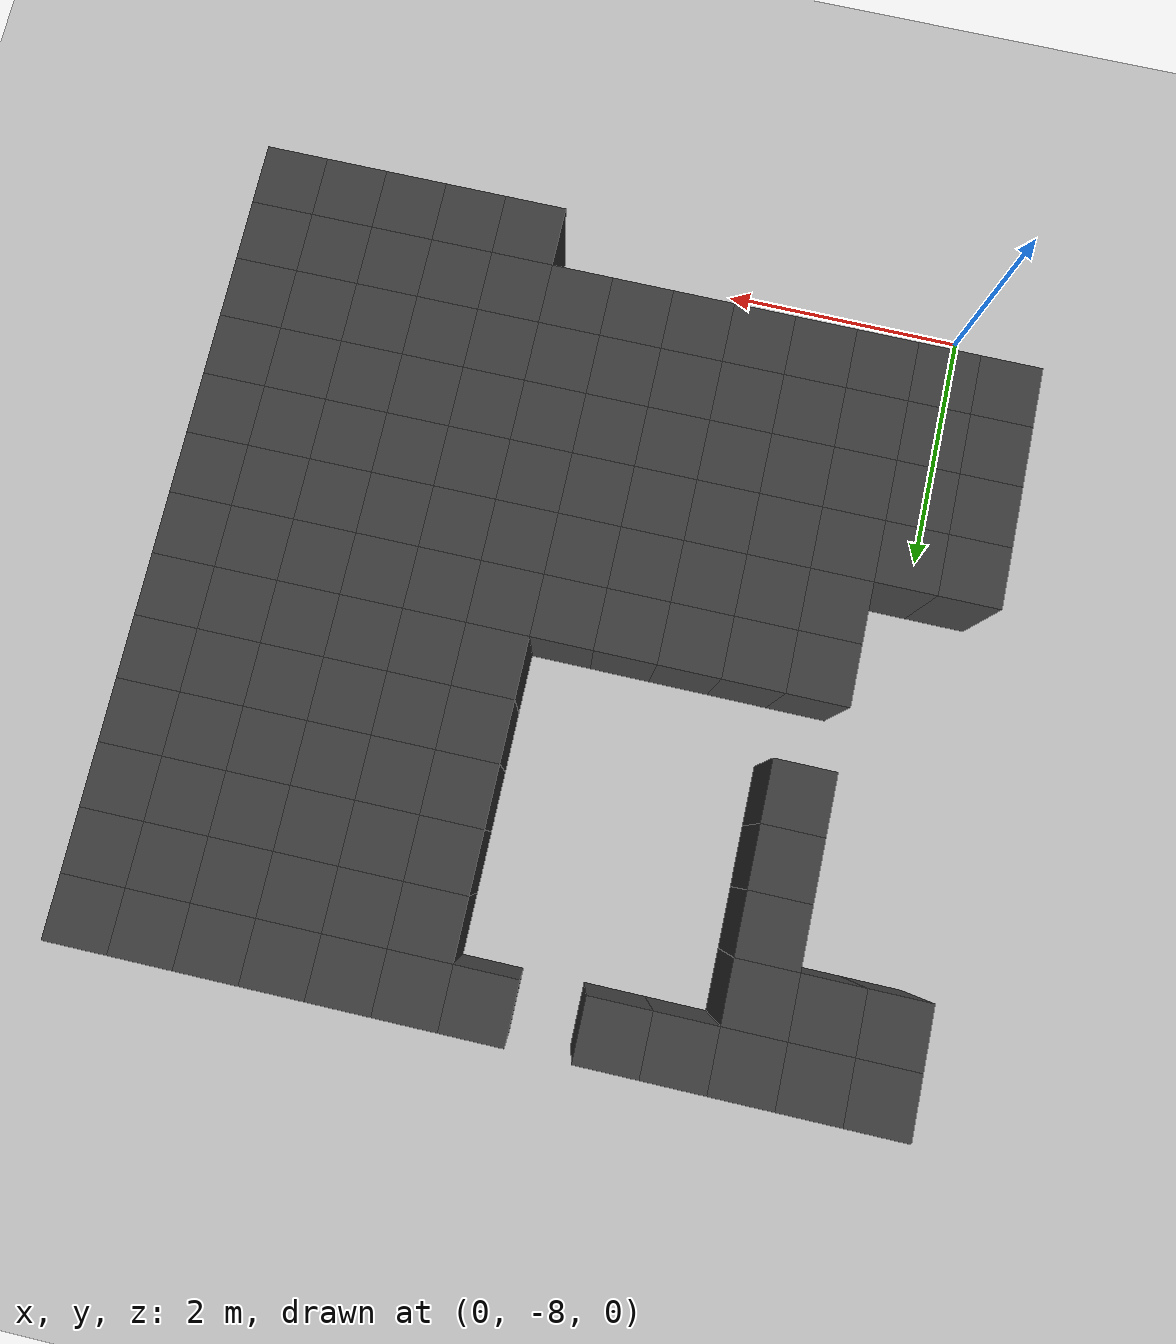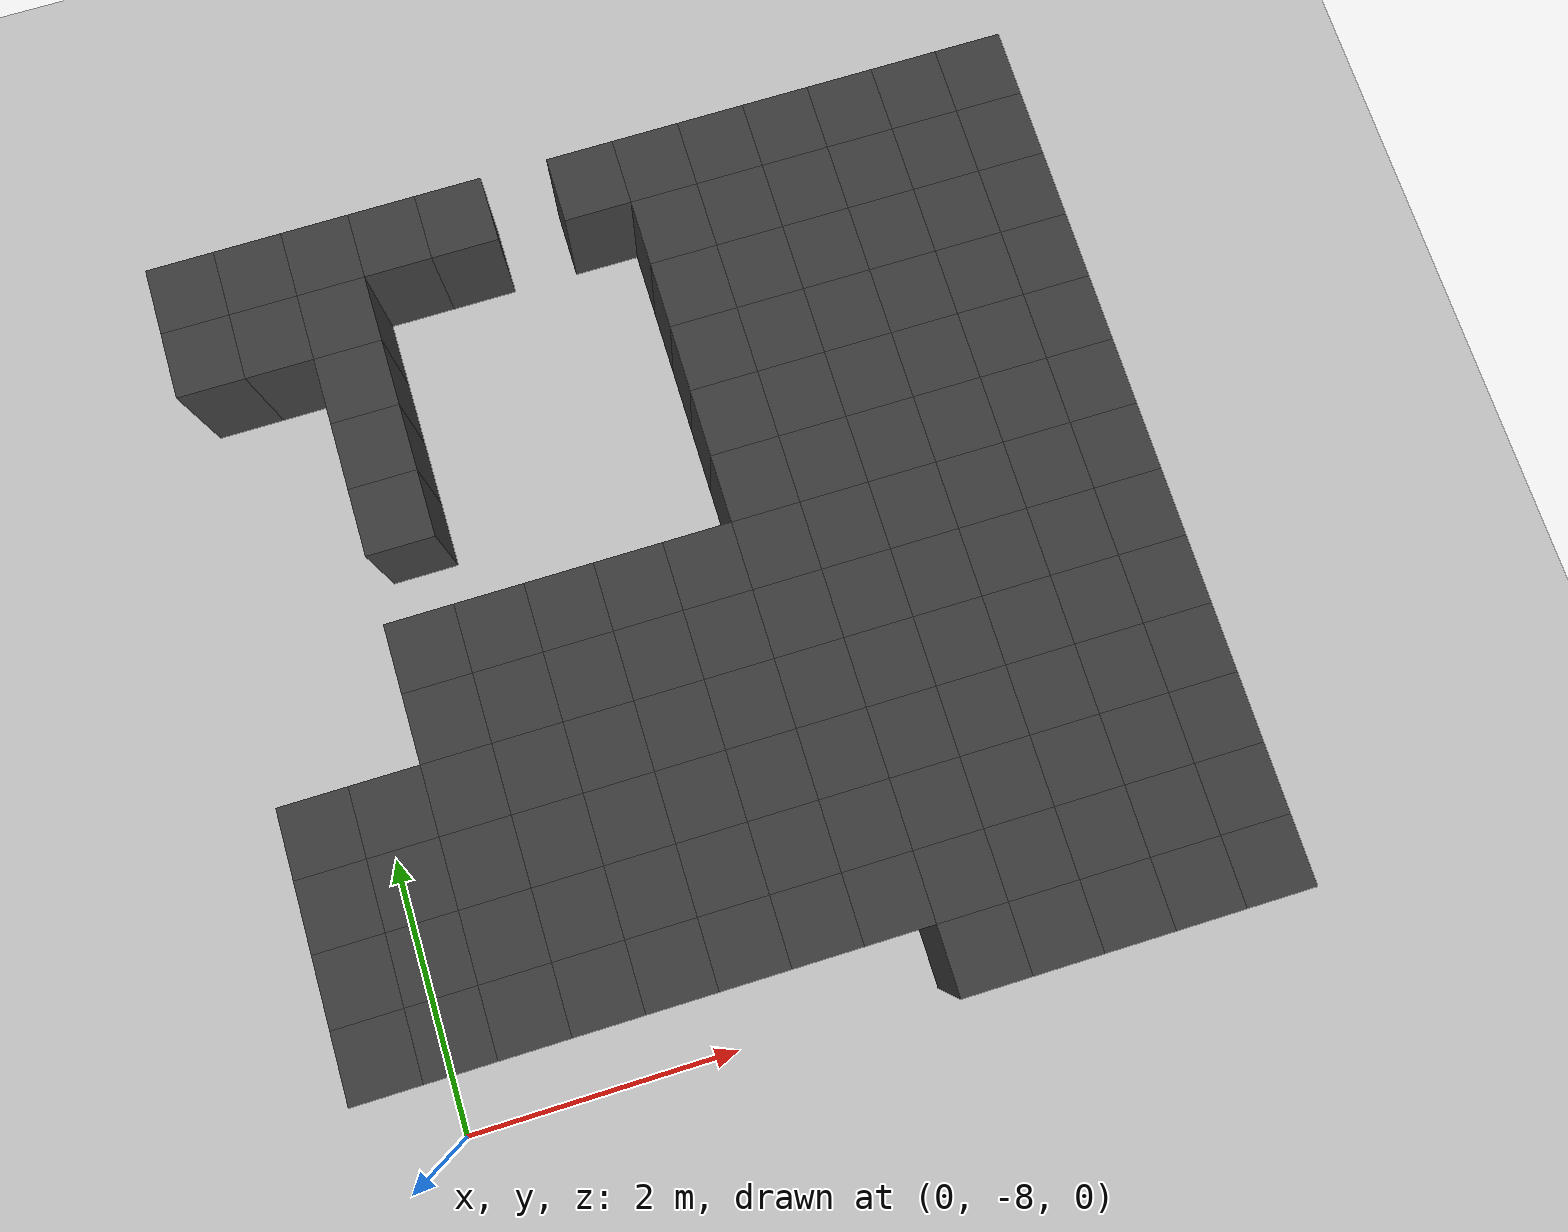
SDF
<sdf version="1.7">
 <world name="map_11672">
  <model name="ground_plane">
   <static>true</static>
   <link name="link">
    <collision name="collision">
     <geometry><plane><normal>0 0 1</normal><size>200 200</size></plane></geometry>
    </collision>
    <visual name="visual">
     <geometry><plane><normal>0 0 1</normal><size>200 200</size></plane></geometry>
     <material><ambient>0.8 0.8 0.8 1</ambient><diffuse>0.8 0.8 0.8 1</diffuse></material>
    </visual>
   </link>
  </model>
  <model name="maze_environment">
   <static>true</static>
   <link name="wall_1171">
    <pose>-0.250 -1.750 0.500 0 0 0</pose>
    <collision name="col"><geometry><box><size>0.5 0.5 1.0</size></box></geometry></collision>
    <visual name="vis">
     <geometry><box><size>0.5 0.5 1.0</size></box></geometry>
     <material><ambient>0.15 0.15 0.15 1</ambient><diffuse>0.25 0.25 0.25 1</diffuse></material>
    </visual>
   </link>
   <link name="wall_1172">
    <pose>0.250 -1.750 0.500 0 0 0</pose>
    <collision name="col"><geometry><box><size>0.5 0.5 1.0</size></box></geometry></collision>
    <visual name="vis">
     <geometry><box><size>0.5 0.5 1.0</size></box></geometry>
     <material><ambient>0.15 0.15 0.15 1</ambient><diffuse>0.25 0.25 0.25 1</diffuse></material>
    </visual>
   </link>
   <link name="wall_1173">
    <pose>0.750 -1.750 0.500 0 0 0</pose>
    <collision name="col"><geometry><box><size>0.5 0.5 1.0</size></box></geometry></collision>
    <visual name="vis">
     <geometry><box><size>0.5 0.5 1.0</size></box></geometry>
     <material><ambient>0.15 0.15 0.15 1</ambient><diffuse>0.25 0.25 0.25 1</diffuse></material>
    </visual>
   </link>
   <link name="wall_1174">
    <pose>1.250 -1.750 0.500 0 0 0</pose>
    <collision name="col"><geometry><box><size>0.5 0.5 1.0</size></box></geometry></collision>
    <visual name="vis">
     <geometry><box><size>0.5 0.5 1.0</size></box></geometry>
     <material><ambient>0.15 0.15 0.15 1</ambient><diffuse>0.25 0.25 0.25 1</diffuse></material>
    </visual>
   </link>
   <link name="wall_1175">
    <pose>1.750 -1.750 0.500 0 0 0</pose>
    <collision name="col"><geometry><box><size>0.5 0.5 1.0</size></box></geometry></collision>
    <visual name="vis">
     <geometry><box><size>0.5 0.5 1.0</size></box></geometry>
     <material><ambient>0.15 0.15 0.15 1</ambient><diffuse>0.25 0.25 0.25 1</diffuse></material>
    </visual>
   </link>
   <link name="wall_1176">
    <pose>2.750 -1.750 0.500 0 0 0</pose>
    <collision name="col"><geometry><box><size>0.5 0.5 1.0</size></box></geometry></collision>
    <visual name="vis">
     <geometry><box><size>0.5 0.5 1.0</size></box></geometry>
     <material><ambient>0.15 0.15 0.15 1</ambient><diffuse>0.25 0.25 0.25 1</diffuse></material>
    </visual>
   </link>
   <link name="wall_1177">
    <pose>3.250 -1.750 0.500 0 0 0</pose>
    <collision name="col"><geometry><box><size>0.5 0.5 1.0</size></box></geometry></collision>
    <visual name="vis">
     <geometry><box><size>0.5 0.5 1.0</size></box></geometry>
     <material><ambient>0.15 0.15 0.15 1</ambient><diffuse>0.25 0.25 0.25 1</diffuse></material>
    </visual>
   </link>
   <link name="wall_1178">
    <pose>3.750 -1.750 0.500 0 0 0</pose>
    <collision name="col"><geometry><box><size>0.5 0.5 1.0</size></box></geometry></collision>
    <visual name="vis">
     <geometry><box><size>0.5 0.5 1.0</size></box></geometry>
     <material><ambient>0.15 0.15 0.15 1</ambient><diffuse>0.25 0.25 0.25 1</diffuse></material>
    </visual>
   </link>
   <link name="wall_1179">
    <pose>4.250 -1.750 0.500 0 0 0</pose>
    <collision name="col"><geometry><box><size>0.5 0.5 1.0</size></box></geometry></collision>
    <visual name="vis">
     <geometry><box><size>0.5 0.5 1.0</size></box></geometry>
     <material><ambient>0.15 0.15 0.15 1</ambient><diffuse>0.25 0.25 0.25 1</diffuse></material>
    </visual>
   </link>
   <link name="wall_1180">
    <pose>4.750 -1.750 0.500 0 0 0</pose>
    <collision name="col"><geometry><box><size>0.5 0.5 1.0</size></box></geometry></collision>
    <visual name="vis">
     <geometry><box><size>0.5 0.5 1.0</size></box></geometry>
     <material><ambient>0.15 0.15 0.15 1</ambient><diffuse>0.25 0.25 0.25 1</diffuse></material>
    </visual>
   </link>
   <link name="wall_1181">
    <pose>5.250 -1.750 0.500 0 0 0</pose>
    <collision name="col"><geometry><box><size>0.5 0.5 1.0</size></box></geometry></collision>
    <visual name="vis">
     <geometry><box><size>0.5 0.5 1.0</size></box></geometry>
     <material><ambient>0.15 0.15 0.15 1</ambient><diffuse>0.25 0.25 0.25 1</diffuse></material>
    </visual>
   </link>
   <link name="wall_1182">
    <pose>5.750 -1.750 0.500 0 0 0</pose>
    <collision name="col"><geometry><box><size>0.5 0.5 1.0</size></box></geometry></collision>
    <visual name="vis">
     <geometry><box><size>0.5 0.5 1.0</size></box></geometry>
     <material><ambient>0.15 0.15 0.15 1</ambient><diffuse>0.25 0.25 0.25 1</diffuse></material>
    </visual>
   </link>
   <link name="wall_1219">
    <pose>-0.250 -2.250 0.500 0 0 0</pose>
    <collision name="col"><geometry><box><size>0.5 0.5 1.0</size></box></geometry></collision>
    <visual name="vis">
     <geometry><box><size>0.5 0.5 1.0</size></box></geometry>
     <material><ambient>0.15 0.15 0.15 1</ambient><diffuse>0.25 0.25 0.25 1</diffuse></material>
    </visual>
   </link>
   <link name="wall_1220">
    <pose>0.250 -2.250 0.500 0 0 0</pose>
    <collision name="col"><geometry><box><size>0.5 0.5 1.0</size></box></geometry></collision>
    <visual name="vis">
     <geometry><box><size>0.5 0.5 1.0</size></box></geometry>
     <material><ambient>0.15 0.15 0.15 1</ambient><diffuse>0.25 0.25 0.25 1</diffuse></material>
    </visual>
   </link>
   <link name="wall_1221">
    <pose>0.750 -2.250 0.500 0 0 0</pose>
    <collision name="col"><geometry><box><size>0.5 0.5 1.0</size></box></geometry></collision>
    <visual name="vis">
     <geometry><box><size>0.5 0.5 1.0</size></box></geometry>
     <material><ambient>0.15 0.15 0.15 1</ambient><diffuse>0.25 0.25 0.25 1</diffuse></material>
    </visual>
   </link>
   <link name="wall_1222">
    <pose>3.250 -2.250 0.500 0 0 0</pose>
    <collision name="col"><geometry><box><size>0.5 0.5 1.0</size></box></geometry></collision>
    <visual name="vis">
     <geometry><box><size>0.5 0.5 1.0</size></box></geometry>
     <material><ambient>0.15 0.15 0.15 1</ambient><diffuse>0.25 0.25 0.25 1</diffuse></material>
    </visual>
   </link>
   <link name="wall_1223">
    <pose>3.750 -2.250 0.500 0 0 0</pose>
    <collision name="col"><geometry><box><size>0.5 0.5 1.0</size></box></geometry></collision>
    <visual name="vis">
     <geometry><box><size>0.5 0.5 1.0</size></box></geometry>
     <material><ambient>0.15 0.15 0.15 1</ambient><diffuse>0.25 0.25 0.25 1</diffuse></material>
    </visual>
   </link>
   <link name="wall_1224">
    <pose>4.250 -2.250 0.500 0 0 0</pose>
    <collision name="col"><geometry><box><size>0.5 0.5 1.0</size></box></geometry></collision>
    <visual name="vis">
     <geometry><box><size>0.5 0.5 1.0</size></box></geometry>
     <material><ambient>0.15 0.15 0.15 1</ambient><diffuse>0.25 0.25 0.25 1</diffuse></material>
    </visual>
   </link>
   <link name="wall_1225">
    <pose>4.750 -2.250 0.500 0 0 0</pose>
    <collision name="col"><geometry><box><size>0.5 0.5 1.0</size></box></geometry></collision>
    <visual name="vis">
     <geometry><box><size>0.5 0.5 1.0</size></box></geometry>
     <material><ambient>0.15 0.15 0.15 1</ambient><diffuse>0.25 0.25 0.25 1</diffuse></material>
    </visual>
   </link>
   <link name="wall_1226">
    <pose>5.250 -2.250 0.500 0 0 0</pose>
    <collision name="col"><geometry><box><size>0.5 0.5 1.0</size></box></geometry></collision>
    <visual name="vis">
     <geometry><box><size>0.5 0.5 1.0</size></box></geometry>
     <material><ambient>0.15 0.15 0.15 1</ambient><diffuse>0.25 0.25 0.25 1</diffuse></material>
    </visual>
   </link>
   <link name="wall_1227">
    <pose>5.750 -2.250 0.500 0 0 0</pose>
    <collision name="col"><geometry><box><size>0.5 0.5 1.0</size></box></geometry></collision>
    <visual name="vis">
     <geometry><box><size>0.5 0.5 1.0</size></box></geometry>
     <material><ambient>0.15 0.15 0.15 1</ambient><diffuse>0.25 0.25 0.25 1</diffuse></material>
    </visual>
   </link>
   <link name="wall_1260">
    <pose>0.750 -2.750 0.500 0 0 0</pose>
    <collision name="col"><geometry><box><size>0.5 0.5 1.0</size></box></geometry></collision>
    <visual name="vis">
     <geometry><box><size>0.5 0.5 1.0</size></box></geometry>
     <material><ambient>0.15 0.15 0.15 1</ambient><diffuse>0.25 0.25 0.25 1</diffuse></material>
    </visual>
   </link>
   <link name="wall_1261">
    <pose>3.250 -2.750 0.500 0 0 0</pose>
    <collision name="col"><geometry><box><size>0.5 0.5 1.0</size></box></geometry></collision>
    <visual name="vis">
     <geometry><box><size>0.5 0.5 1.0</size></box></geometry>
     <material><ambient>0.15 0.15 0.15 1</ambient><diffuse>0.25 0.25 0.25 1</diffuse></material>
    </visual>
   </link>
   <link name="wall_1262">
    <pose>3.750 -2.750 0.500 0 0 0</pose>
    <collision name="col"><geometry><box><size>0.5 0.5 1.0</size></box></geometry></collision>
    <visual name="vis">
     <geometry><box><size>0.5 0.5 1.0</size></box></geometry>
     <material><ambient>0.15 0.15 0.15 1</ambient><diffuse>0.25 0.25 0.25 1</diffuse></material>
    </visual>
   </link>
   <link name="wall_1263">
    <pose>4.250 -2.750 0.500 0 0 0</pose>
    <collision name="col"><geometry><box><size>0.5 0.5 1.0</size></box></geometry></collision>
    <visual name="vis">
     <geometry><box><size>0.5 0.5 1.0</size></box></geometry>
     <material><ambient>0.15 0.15 0.15 1</ambient><diffuse>0.25 0.25 0.25 1</diffuse></material>
    </visual>
   </link>
   <link name="wall_1264">
    <pose>4.750 -2.750 0.500 0 0 0</pose>
    <collision name="col"><geometry><box><size>0.5 0.5 1.0</size></box></geometry></collision>
    <visual name="vis">
     <geometry><box><size>0.5 0.5 1.0</size></box></geometry>
     <material><ambient>0.15 0.15 0.15 1</ambient><diffuse>0.25 0.25 0.25 1</diffuse></material>
    </visual>
   </link>
   <link name="wall_1265">
    <pose>5.250 -2.750 0.500 0 0 0</pose>
    <collision name="col"><geometry><box><size>0.5 0.5 1.0</size></box></geometry></collision>
    <visual name="vis">
     <geometry><box><size>0.5 0.5 1.0</size></box></geometry>
     <material><ambient>0.15 0.15 0.15 1</ambient><diffuse>0.25 0.25 0.25 1</diffuse></material>
    </visual>
   </link>
   <link name="wall_1266">
    <pose>5.750 -2.750 0.500 0 0 0</pose>
    <collision name="col"><geometry><box><size>0.5 0.5 1.0</size></box></geometry></collision>
    <visual name="vis">
     <geometry><box><size>0.5 0.5 1.0</size></box></geometry>
     <material><ambient>0.15 0.15 0.15 1</ambient><diffuse>0.25 0.25 0.25 1</diffuse></material>
    </visual>
   </link>
   <link name="wall_1299">
    <pose>0.750 -3.250 0.500 0 0 0</pose>
    <collision name="col"><geometry><box><size>0.5 0.5 1.0</size></box></geometry></collision>
    <visual name="vis">
     <geometry><box><size>0.5 0.5 1.0</size></box></geometry>
     <material><ambient>0.15 0.15 0.15 1</ambient><diffuse>0.25 0.25 0.25 1</diffuse></material>
    </visual>
   </link>
   <link name="wall_1300">
    <pose>3.250 -3.250 0.500 0 0 0</pose>
    <collision name="col"><geometry><box><size>0.5 0.5 1.0</size></box></geometry></collision>
    <visual name="vis">
     <geometry><box><size>0.5 0.5 1.0</size></box></geometry>
     <material><ambient>0.15 0.15 0.15 1</ambient><diffuse>0.25 0.25 0.25 1</diffuse></material>
    </visual>
   </link>
   <link name="wall_1301">
    <pose>3.750 -3.250 0.500 0 0 0</pose>
    <collision name="col"><geometry><box><size>0.5 0.5 1.0</size></box></geometry></collision>
    <visual name="vis">
     <geometry><box><size>0.5 0.5 1.0</size></box></geometry>
     <material><ambient>0.15 0.15 0.15 1</ambient><diffuse>0.25 0.25 0.25 1</diffuse></material>
    </visual>
   </link>
   <link name="wall_1302">
    <pose>4.250 -3.250 0.500 0 0 0</pose>
    <collision name="col"><geometry><box><size>0.5 0.5 1.0</size></box></geometry></collision>
    <visual name="vis">
     <geometry><box><size>0.5 0.5 1.0</size></box></geometry>
     <material><ambient>0.15 0.15 0.15 1</ambient><diffuse>0.25 0.25 0.25 1</diffuse></material>
    </visual>
   </link>
   <link name="wall_1303">
    <pose>4.750 -3.250 0.500 0 0 0</pose>
    <collision name="col"><geometry><box><size>0.5 0.5 1.0</size></box></geometry></collision>
    <visual name="vis">
     <geometry><box><size>0.5 0.5 1.0</size></box></geometry>
     <material><ambient>0.15 0.15 0.15 1</ambient><diffuse>0.25 0.25 0.25 1</diffuse></material>
    </visual>
   </link>
   <link name="wall_1304">
    <pose>5.250 -3.250 0.500 0 0 0</pose>
    <collision name="col"><geometry><box><size>0.5 0.5 1.0</size></box></geometry></collision>
    <visual name="vis">
     <geometry><box><size>0.5 0.5 1.0</size></box></geometry>
     <material><ambient>0.15 0.15 0.15 1</ambient><diffuse>0.25 0.25 0.25 1</diffuse></material>
    </visual>
   </link>
   <link name="wall_1305">
    <pose>5.750 -3.250 0.500 0 0 0</pose>
    <collision name="col"><geometry><box><size>0.5 0.5 1.0</size></box></geometry></collision>
    <visual name="vis">
     <geometry><box><size>0.5 0.5 1.0</size></box></geometry>
     <material><ambient>0.15 0.15 0.15 1</ambient><diffuse>0.25 0.25 0.25 1</diffuse></material>
    </visual>
   </link>
   <link name="wall_1338">
    <pose>0.750 -3.750 0.500 0 0 0</pose>
    <collision name="col"><geometry><box><size>0.5 0.5 1.0</size></box></geometry></collision>
    <visual name="vis">
     <geometry><box><size>0.5 0.5 1.0</size></box></geometry>
     <material><ambient>0.15 0.15 0.15 1</ambient><diffuse>0.25 0.25 0.25 1</diffuse></material>
    </visual>
   </link>
   <link name="wall_1339">
    <pose>3.250 -3.750 0.500 0 0 0</pose>
    <collision name="col"><geometry><box><size>0.5 0.5 1.0</size></box></geometry></collision>
    <visual name="vis">
     <geometry><box><size>0.5 0.5 1.0</size></box></geometry>
     <material><ambient>0.15 0.15 0.15 1</ambient><diffuse>0.25 0.25 0.25 1</diffuse></material>
    </visual>
   </link>
   <link name="wall_1340">
    <pose>3.750 -3.750 0.500 0 0 0</pose>
    <collision name="col"><geometry><box><size>0.5 0.5 1.0</size></box></geometry></collision>
    <visual name="vis">
     <geometry><box><size>0.5 0.5 1.0</size></box></geometry>
     <material><ambient>0.15 0.15 0.15 1</ambient><diffuse>0.25 0.25 0.25 1</diffuse></material>
    </visual>
   </link>
   <link name="wall_1341">
    <pose>4.250 -3.750 0.500 0 0 0</pose>
    <collision name="col"><geometry><box><size>0.5 0.5 1.0</size></box></geometry></collision>
    <visual name="vis">
     <geometry><box><size>0.5 0.5 1.0</size></box></geometry>
     <material><ambient>0.15 0.15 0.15 1</ambient><diffuse>0.25 0.25 0.25 1</diffuse></material>
    </visual>
   </link>
   <link name="wall_1342">
    <pose>4.750 -3.750 0.500 0 0 0</pose>
    <collision name="col"><geometry><box><size>0.5 0.5 1.0</size></box></geometry></collision>
    <visual name="vis">
     <geometry><box><size>0.5 0.5 1.0</size></box></geometry>
     <material><ambient>0.15 0.15 0.15 1</ambient><diffuse>0.25 0.25 0.25 1</diffuse></material>
    </visual>
   </link>
   <link name="wall_1343">
    <pose>5.250 -3.750 0.500 0 0 0</pose>
    <collision name="col"><geometry><box><size>0.5 0.5 1.0</size></box></geometry></collision>
    <visual name="vis">
     <geometry><box><size>0.5 0.5 1.0</size></box></geometry>
     <material><ambient>0.15 0.15 0.15 1</ambient><diffuse>0.25 0.25 0.25 1</diffuse></material>
    </visual>
   </link>
   <link name="wall_1344">
    <pose>5.750 -3.750 0.500 0 0 0</pose>
    <collision name="col"><geometry><box><size>0.5 0.5 1.0</size></box></geometry></collision>
    <visual name="vis">
     <geometry><box><size>0.5 0.5 1.0</size></box></geometry>
     <material><ambient>0.15 0.15 0.15 1</ambient><diffuse>0.25 0.25 0.25 1</diffuse></material>
    </visual>
   </link>
   <link name="wall_1377">
    <pose>3.250 -4.250 0.500 0 0 0</pose>
    <collision name="col"><geometry><box><size>0.5 0.5 1.0</size></box></geometry></collision>
    <visual name="vis">
     <geometry><box><size>0.5 0.5 1.0</size></box></geometry>
     <material><ambient>0.15 0.15 0.15 1</ambient><diffuse>0.25 0.25 0.25 1</diffuse></material>
    </visual>
   </link>
   <link name="wall_1378">
    <pose>3.750 -4.250 0.500 0 0 0</pose>
    <collision name="col"><geometry><box><size>0.5 0.5 1.0</size></box></geometry></collision>
    <visual name="vis">
     <geometry><box><size>0.5 0.5 1.0</size></box></geometry>
     <material><ambient>0.15 0.15 0.15 1</ambient><diffuse>0.25 0.25 0.25 1</diffuse></material>
    </visual>
   </link>
   <link name="wall_1379">
    <pose>4.250 -4.250 0.500 0 0 0</pose>
    <collision name="col"><geometry><box><size>0.5 0.5 1.0</size></box></geometry></collision>
    <visual name="vis">
     <geometry><box><size>0.5 0.5 1.0</size></box></geometry>
     <material><ambient>0.15 0.15 0.15 1</ambient><diffuse>0.25 0.25 0.25 1</diffuse></material>
    </visual>
   </link>
   <link name="wall_1380">
    <pose>4.750 -4.250 0.500 0 0 0</pose>
    <collision name="col"><geometry><box><size>0.5 0.5 1.0</size></box></geometry></collision>
    <visual name="vis">
     <geometry><box><size>0.5 0.5 1.0</size></box></geometry>
     <material><ambient>0.15 0.15 0.15 1</ambient><diffuse>0.25 0.25 0.25 1</diffuse></material>
    </visual>
   </link>
   <link name="wall_1381">
    <pose>5.250 -4.250 0.500 0 0 0</pose>
    <collision name="col"><geometry><box><size>0.5 0.5 1.0</size></box></geometry></collision>
    <visual name="vis">
     <geometry><box><size>0.5 0.5 1.0</size></box></geometry>
     <material><ambient>0.15 0.15 0.15 1</ambient><diffuse>0.25 0.25 0.25 1</diffuse></material>
    </visual>
   </link>
   <link name="wall_1382">
    <pose>5.750 -4.250 0.500 0 0 0</pose>
    <collision name="col"><geometry><box><size>0.5 0.5 1.0</size></box></geometry></collision>
    <visual name="vis">
     <geometry><box><size>0.5 0.5 1.0</size></box></geometry>
     <material><ambient>0.15 0.15 0.15 1</ambient><diffuse>0.25 0.25 0.25 1</diffuse></material>
    </visual>
   </link>
   <link name="wall_1415">
    <pose>0.750 -4.750 0.500 0 0 0</pose>
    <collision name="col"><geometry><box><size>0.5 0.5 1.0</size></box></geometry></collision>
    <visual name="vis">
     <geometry><box><size>0.5 0.5 1.0</size></box></geometry>
     <material><ambient>0.15 0.15 0.15 1</ambient><diffuse>0.25 0.25 0.25 1</diffuse></material>
    </visual>
   </link>
   <link name="wall_1416">
    <pose>1.250 -4.750 0.500 0 0 0</pose>
    <collision name="col"><geometry><box><size>0.5 0.5 1.0</size></box></geometry></collision>
    <visual name="vis">
     <geometry><box><size>0.5 0.5 1.0</size></box></geometry>
     <material><ambient>0.15 0.15 0.15 1</ambient><diffuse>0.25 0.25 0.25 1</diffuse></material>
    </visual>
   </link>
   <link name="wall_1417">
    <pose>1.750 -4.750 0.500 0 0 0</pose>
    <collision name="col"><geometry><box><size>0.5 0.5 1.0</size></box></geometry></collision>
    <visual name="vis">
     <geometry><box><size>0.5 0.5 1.0</size></box></geometry>
     <material><ambient>0.15 0.15 0.15 1</ambient><diffuse>0.25 0.25 0.25 1</diffuse></material>
    </visual>
   </link>
   <link name="wall_1418">
    <pose>2.250 -4.750 0.500 0 0 0</pose>
    <collision name="col"><geometry><box><size>0.5 0.5 1.0</size></box></geometry></collision>
    <visual name="vis">
     <geometry><box><size>0.5 0.5 1.0</size></box></geometry>
     <material><ambient>0.15 0.15 0.15 1</ambient><diffuse>0.25 0.25 0.25 1</diffuse></material>
    </visual>
   </link>
   <link name="wall_1419">
    <pose>2.750 -4.750 0.500 0 0 0</pose>
    <collision name="col"><geometry><box><size>0.5 0.5 1.0</size></box></geometry></collision>
    <visual name="vis">
     <geometry><box><size>0.5 0.5 1.0</size></box></geometry>
     <material><ambient>0.15 0.15 0.15 1</ambient><diffuse>0.25 0.25 0.25 1</diffuse></material>
    </visual>
   </link>
   <link name="wall_1420">
    <pose>3.250 -4.750 0.500 0 0 0</pose>
    <collision name="col"><geometry><box><size>0.5 0.5 1.0</size></box></geometry></collision>
    <visual name="vis">
     <geometry><box><size>0.5 0.5 1.0</size></box></geometry>
     <material><ambient>0.15 0.15 0.15 1</ambient><diffuse>0.25 0.25 0.25 1</diffuse></material>
    </visual>
   </link>
   <link name="wall_1421">
    <pose>3.750 -4.750 0.500 0 0 0</pose>
    <collision name="col"><geometry><box><size>0.5 0.5 1.0</size></box></geometry></collision>
    <visual name="vis">
     <geometry><box><size>0.5 0.5 1.0</size></box></geometry>
     <material><ambient>0.15 0.15 0.15 1</ambient><diffuse>0.25 0.25 0.25 1</diffuse></material>
    </visual>
   </link>
   <link name="wall_1422">
    <pose>4.250 -4.750 0.500 0 0 0</pose>
    <collision name="col"><geometry><box><size>0.5 0.5 1.0</size></box></geometry></collision>
    <visual name="vis">
     <geometry><box><size>0.5 0.5 1.0</size></box></geometry>
     <material><ambient>0.15 0.15 0.15 1</ambient><diffuse>0.25 0.25 0.25 1</diffuse></material>
    </visual>
   </link>
   <link name="wall_1423">
    <pose>4.750 -4.750 0.500 0 0 0</pose>
    <collision name="col"><geometry><box><size>0.5 0.5 1.0</size></box></geometry></collision>
    <visual name="vis">
     <geometry><box><size>0.5 0.5 1.0</size></box></geometry>
     <material><ambient>0.15 0.15 0.15 1</ambient><diffuse>0.25 0.25 0.25 1</diffuse></material>
    </visual>
   </link>
   <link name="wall_1424">
    <pose>5.250 -4.750 0.500 0 0 0</pose>
    <collision name="col"><geometry><box><size>0.5 0.5 1.0</size></box></geometry></collision>
    <visual name="vis">
     <geometry><box><size>0.5 0.5 1.0</size></box></geometry>
     <material><ambient>0.15 0.15 0.15 1</ambient><diffuse>0.25 0.25 0.25 1</diffuse></material>
    </visual>
   </link>
   <link name="wall_1425">
    <pose>5.750 -4.750 0.500 0 0 0</pose>
    <collision name="col"><geometry><box><size>0.5 0.5 1.0</size></box></geometry></collision>
    <visual name="vis">
     <geometry><box><size>0.5 0.5 1.0</size></box></geometry>
     <material><ambient>0.15 0.15 0.15 1</ambient><diffuse>0.25 0.25 0.25 1</diffuse></material>
    </visual>
   </link>
   <link name="wall_1458">
    <pose>0.750 -5.250 0.500 0 0 0</pose>
    <collision name="col"><geometry><box><size>0.5 0.5 1.0</size></box></geometry></collision>
    <visual name="vis">
     <geometry><box><size>0.5 0.5 1.0</size></box></geometry>
     <material><ambient>0.15 0.15 0.15 1</ambient><diffuse>0.25 0.25 0.25 1</diffuse></material>
    </visual>
   </link>
   <link name="wall_1459">
    <pose>1.250 -5.250 0.500 0 0 0</pose>
    <collision name="col"><geometry><box><size>0.5 0.5 1.0</size></box></geometry></collision>
    <visual name="vis">
     <geometry><box><size>0.5 0.5 1.0</size></box></geometry>
     <material><ambient>0.15 0.15 0.15 1</ambient><diffuse>0.25 0.25 0.25 1</diffuse></material>
    </visual>
   </link>
   <link name="wall_1460">
    <pose>1.750 -5.250 0.500 0 0 0</pose>
    <collision name="col"><geometry><box><size>0.5 0.5 1.0</size></box></geometry></collision>
    <visual name="vis">
     <geometry><box><size>0.5 0.5 1.0</size></box></geometry>
     <material><ambient>0.15 0.15 0.15 1</ambient><diffuse>0.25 0.25 0.25 1</diffuse></material>
    </visual>
   </link>
   <link name="wall_1461">
    <pose>2.250 -5.250 0.500 0 0 0</pose>
    <collision name="col"><geometry><box><size>0.5 0.5 1.0</size></box></geometry></collision>
    <visual name="vis">
     <geometry><box><size>0.5 0.5 1.0</size></box></geometry>
     <material><ambient>0.15 0.15 0.15 1</ambient><diffuse>0.25 0.25 0.25 1</diffuse></material>
    </visual>
   </link>
   <link name="wall_1462">
    <pose>2.750 -5.250 0.500 0 0 0</pose>
    <collision name="col"><geometry><box><size>0.5 0.5 1.0</size></box></geometry></collision>
    <visual name="vis">
     <geometry><box><size>0.5 0.5 1.0</size></box></geometry>
     <material><ambient>0.15 0.15 0.15 1</ambient><diffuse>0.25 0.25 0.25 1</diffuse></material>
    </visual>
   </link>
   <link name="wall_1463">
    <pose>3.250 -5.250 0.500 0 0 0</pose>
    <collision name="col"><geometry><box><size>0.5 0.5 1.0</size></box></geometry></collision>
    <visual name="vis">
     <geometry><box><size>0.5 0.5 1.0</size></box></geometry>
     <material><ambient>0.15 0.15 0.15 1</ambient><diffuse>0.25 0.25 0.25 1</diffuse></material>
    </visual>
   </link>
   <link name="wall_1464">
    <pose>3.750 -5.250 0.500 0 0 0</pose>
    <collision name="col"><geometry><box><size>0.5 0.5 1.0</size></box></geometry></collision>
    <visual name="vis">
     <geometry><box><size>0.5 0.5 1.0</size></box></geometry>
     <material><ambient>0.15 0.15 0.15 1</ambient><diffuse>0.25 0.25 0.25 1</diffuse></material>
    </visual>
   </link>
   <link name="wall_1465">
    <pose>4.250 -5.250 0.500 0 0 0</pose>
    <collision name="col"><geometry><box><size>0.5 0.5 1.0</size></box></geometry></collision>
    <visual name="vis">
     <geometry><box><size>0.5 0.5 1.0</size></box></geometry>
     <material><ambient>0.15 0.15 0.15 1</ambient><diffuse>0.25 0.25 0.25 1</diffuse></material>
    </visual>
   </link>
   <link name="wall_1466">
    <pose>4.750 -5.250 0.500 0 0 0</pose>
    <collision name="col"><geometry><box><size>0.5 0.5 1.0</size></box></geometry></collision>
    <visual name="vis">
     <geometry><box><size>0.5 0.5 1.0</size></box></geometry>
     <material><ambient>0.15 0.15 0.15 1</ambient><diffuse>0.25 0.25 0.25 1</diffuse></material>
    </visual>
   </link>
   <link name="wall_1467">
    <pose>5.250 -5.250 0.500 0 0 0</pose>
    <collision name="col"><geometry><box><size>0.5 0.5 1.0</size></box></geometry></collision>
    <visual name="vis">
     <geometry><box><size>0.5 0.5 1.0</size></box></geometry>
     <material><ambient>0.15 0.15 0.15 1</ambient><diffuse>0.25 0.25 0.25 1</diffuse></material>
    </visual>
   </link>
   <link name="wall_1468">
    <pose>5.750 -5.250 0.500 0 0 0</pose>
    <collision name="col"><geometry><box><size>0.5 0.5 1.0</size></box></geometry></collision>
    <visual name="vis">
     <geometry><box><size>0.5 0.5 1.0</size></box></geometry>
     <material><ambient>0.15 0.15 0.15 1</ambient><diffuse>0.25 0.25 0.25 1</diffuse></material>
    </visual>
   </link>
   <link name="wall_1505">
    <pose>-0.250 -5.750 0.500 0 0 0</pose>
    <collision name="col"><geometry><box><size>0.5 0.5 1.0</size></box></geometry></collision>
    <visual name="vis">
     <geometry><box><size>0.5 0.5 1.0</size></box></geometry>
     <material><ambient>0.15 0.15 0.15 1</ambient><diffuse>0.25 0.25 0.25 1</diffuse></material>
    </visual>
   </link>
   <link name="wall_1506">
    <pose>0.250 -5.750 0.500 0 0 0</pose>
    <collision name="col"><geometry><box><size>0.5 0.5 1.0</size></box></geometry></collision>
    <visual name="vis">
     <geometry><box><size>0.5 0.5 1.0</size></box></geometry>
     <material><ambient>0.15 0.15 0.15 1</ambient><diffuse>0.25 0.25 0.25 1</diffuse></material>
    </visual>
   </link>
   <link name="wall_1507">
    <pose>0.750 -5.750 0.500 0 0 0</pose>
    <collision name="col"><geometry><box><size>0.5 0.5 1.0</size></box></geometry></collision>
    <visual name="vis">
     <geometry><box><size>0.5 0.5 1.0</size></box></geometry>
     <material><ambient>0.15 0.15 0.15 1</ambient><diffuse>0.25 0.25 0.25 1</diffuse></material>
    </visual>
   </link>
   <link name="wall_1508">
    <pose>1.250 -5.750 0.500 0 0 0</pose>
    <collision name="col"><geometry><box><size>0.5 0.5 1.0</size></box></geometry></collision>
    <visual name="vis">
     <geometry><box><size>0.5 0.5 1.0</size></box></geometry>
     <material><ambient>0.15 0.15 0.15 1</ambient><diffuse>0.25 0.25 0.25 1</diffuse></material>
    </visual>
   </link>
   <link name="wall_1509">
    <pose>1.750 -5.750 0.500 0 0 0</pose>
    <collision name="col"><geometry><box><size>0.5 0.5 1.0</size></box></geometry></collision>
    <visual name="vis">
     <geometry><box><size>0.5 0.5 1.0</size></box></geometry>
     <material><ambient>0.15 0.15 0.15 1</ambient><diffuse>0.25 0.25 0.25 1</diffuse></material>
    </visual>
   </link>
   <link name="wall_1510">
    <pose>2.250 -5.750 0.500 0 0 0</pose>
    <collision name="col"><geometry><box><size>0.5 0.5 1.0</size></box></geometry></collision>
    <visual name="vis">
     <geometry><box><size>0.5 0.5 1.0</size></box></geometry>
     <material><ambient>0.15 0.15 0.15 1</ambient><diffuse>0.25 0.25 0.25 1</diffuse></material>
    </visual>
   </link>
   <link name="wall_1511">
    <pose>2.750 -5.750 0.500 0 0 0</pose>
    <collision name="col"><geometry><box><size>0.5 0.5 1.0</size></box></geometry></collision>
    <visual name="vis">
     <geometry><box><size>0.5 0.5 1.0</size></box></geometry>
     <material><ambient>0.15 0.15 0.15 1</ambient><diffuse>0.25 0.25 0.25 1</diffuse></material>
    </visual>
   </link>
   <link name="wall_1512">
    <pose>3.250 -5.750 0.500 0 0 0</pose>
    <collision name="col"><geometry><box><size>0.5 0.5 1.0</size></box></geometry></collision>
    <visual name="vis">
     <geometry><box><size>0.5 0.5 1.0</size></box></geometry>
     <material><ambient>0.15 0.15 0.15 1</ambient><diffuse>0.25 0.25 0.25 1</diffuse></material>
    </visual>
   </link>
   <link name="wall_1513">
    <pose>3.750 -5.750 0.500 0 0 0</pose>
    <collision name="col"><geometry><box><size>0.5 0.5 1.0</size></box></geometry></collision>
    <visual name="vis">
     <geometry><box><size>0.5 0.5 1.0</size></box></geometry>
     <material><ambient>0.15 0.15 0.15 1</ambient><diffuse>0.25 0.25 0.25 1</diffuse></material>
    </visual>
   </link>
   <link name="wall_1514">
    <pose>4.250 -5.750 0.500 0 0 0</pose>
    <collision name="col"><geometry><box><size>0.5 0.5 1.0</size></box></geometry></collision>
    <visual name="vis">
     <geometry><box><size>0.5 0.5 1.0</size></box></geometry>
     <material><ambient>0.15 0.15 0.15 1</ambient><diffuse>0.25 0.25 0.25 1</diffuse></material>
    </visual>
   </link>
   <link name="wall_1515">
    <pose>4.750 -5.750 0.500 0 0 0</pose>
    <collision name="col"><geometry><box><size>0.5 0.5 1.0</size></box></geometry></collision>
    <visual name="vis">
     <geometry><box><size>0.5 0.5 1.0</size></box></geometry>
     <material><ambient>0.15 0.15 0.15 1</ambient><diffuse>0.25 0.25 0.25 1</diffuse></material>
    </visual>
   </link>
   <link name="wall_1516">
    <pose>5.250 -5.750 0.500 0 0 0</pose>
    <collision name="col"><geometry><box><size>0.5 0.5 1.0</size></box></geometry></collision>
    <visual name="vis">
     <geometry><box><size>0.5 0.5 1.0</size></box></geometry>
     <material><ambient>0.15 0.15 0.15 1</ambient><diffuse>0.25 0.25 0.25 1</diffuse></material>
    </visual>
   </link>
   <link name="wall_1517">
    <pose>5.750 -5.750 0.500 0 0 0</pose>
    <collision name="col"><geometry><box><size>0.5 0.5 1.0</size></box></geometry></collision>
    <visual name="vis">
     <geometry><box><size>0.5 0.5 1.0</size></box></geometry>
     <material><ambient>0.15 0.15 0.15 1</ambient><diffuse>0.25 0.25 0.25 1</diffuse></material>
    </visual>
   </link>
   <link name="wall_1554">
    <pose>-0.250 -6.250 0.500 0 0 0</pose>
    <collision name="col"><geometry><box><size>0.5 0.5 1.0</size></box></geometry></collision>
    <visual name="vis">
     <geometry><box><size>0.5 0.5 1.0</size></box></geometry>
     <material><ambient>0.15 0.15 0.15 1</ambient><diffuse>0.25 0.25 0.25 1</diffuse></material>
    </visual>
   </link>
   <link name="wall_1555">
    <pose>0.250 -6.250 0.500 0 0 0</pose>
    <collision name="col"><geometry><box><size>0.5 0.5 1.0</size></box></geometry></collision>
    <visual name="vis">
     <geometry><box><size>0.5 0.5 1.0</size></box></geometry>
     <material><ambient>0.15 0.15 0.15 1</ambient><diffuse>0.25 0.25 0.25 1</diffuse></material>
    </visual>
   </link>
   <link name="wall_1556">
    <pose>0.750 -6.250 0.500 0 0 0</pose>
    <collision name="col"><geometry><box><size>0.5 0.5 1.0</size></box></geometry></collision>
    <visual name="vis">
     <geometry><box><size>0.5 0.5 1.0</size></box></geometry>
     <material><ambient>0.15 0.15 0.15 1</ambient><diffuse>0.25 0.25 0.25 1</diffuse></material>
    </visual>
   </link>
   <link name="wall_1557">
    <pose>1.250 -6.250 0.500 0 0 0</pose>
    <collision name="col"><geometry><box><size>0.5 0.5 1.0</size></box></geometry></collision>
    <visual name="vis">
     <geometry><box><size>0.5 0.5 1.0</size></box></geometry>
     <material><ambient>0.15 0.15 0.15 1</ambient><diffuse>0.25 0.25 0.25 1</diffuse></material>
    </visual>
   </link>
   <link name="wall_1558">
    <pose>1.750 -6.250 0.500 0 0 0</pose>
    <collision name="col"><geometry><box><size>0.5 0.5 1.0</size></box></geometry></collision>
    <visual name="vis">
     <geometry><box><size>0.5 0.5 1.0</size></box></geometry>
     <material><ambient>0.15 0.15 0.15 1</ambient><diffuse>0.25 0.25 0.25 1</diffuse></material>
    </visual>
   </link>
   <link name="wall_1559">
    <pose>2.250 -6.250 0.500 0 0 0</pose>
    <collision name="col"><geometry><box><size>0.5 0.5 1.0</size></box></geometry></collision>
    <visual name="vis">
     <geometry><box><size>0.5 0.5 1.0</size></box></geometry>
     <material><ambient>0.15 0.15 0.15 1</ambient><diffuse>0.25 0.25 0.25 1</diffuse></material>
    </visual>
   </link>
   <link name="wall_1560">
    <pose>2.750 -6.250 0.500 0 0 0</pose>
    <collision name="col"><geometry><box><size>0.5 0.5 1.0</size></box></geometry></collision>
    <visual name="vis">
     <geometry><box><size>0.5 0.5 1.0</size></box></geometry>
     <material><ambient>0.15 0.15 0.15 1</ambient><diffuse>0.25 0.25 0.25 1</diffuse></material>
    </visual>
   </link>
   <link name="wall_1561">
    <pose>3.250 -6.250 0.500 0 0 0</pose>
    <collision name="col"><geometry><box><size>0.5 0.5 1.0</size></box></geometry></collision>
    <visual name="vis">
     <geometry><box><size>0.5 0.5 1.0</size></box></geometry>
     <material><ambient>0.15 0.15 0.15 1</ambient><diffuse>0.25 0.25 0.25 1</diffuse></material>
    </visual>
   </link>
   <link name="wall_1562">
    <pose>3.750 -6.250 0.500 0 0 0</pose>
    <collision name="col"><geometry><box><size>0.5 0.5 1.0</size></box></geometry></collision>
    <visual name="vis">
     <geometry><box><size>0.5 0.5 1.0</size></box></geometry>
     <material><ambient>0.15 0.15 0.15 1</ambient><diffuse>0.25 0.25 0.25 1</diffuse></material>
    </visual>
   </link>
   <link name="wall_1563">
    <pose>4.250 -6.250 0.500 0 0 0</pose>
    <collision name="col"><geometry><box><size>0.5 0.5 1.0</size></box></geometry></collision>
    <visual name="vis">
     <geometry><box><size>0.5 0.5 1.0</size></box></geometry>
     <material><ambient>0.15 0.15 0.15 1</ambient><diffuse>0.25 0.25 0.25 1</diffuse></material>
    </visual>
   </link>
   <link name="wall_1564">
    <pose>4.750 -6.250 0.500 0 0 0</pose>
    <collision name="col"><geometry><box><size>0.5 0.5 1.0</size></box></geometry></collision>
    <visual name="vis">
     <geometry><box><size>0.5 0.5 1.0</size></box></geometry>
     <material><ambient>0.15 0.15 0.15 1</ambient><diffuse>0.25 0.25 0.25 1</diffuse></material>
    </visual>
   </link>
   <link name="wall_1565">
    <pose>5.250 -6.250 0.500 0 0 0</pose>
    <collision name="col"><geometry><box><size>0.5 0.5 1.0</size></box></geometry></collision>
    <visual name="vis">
     <geometry><box><size>0.5 0.5 1.0</size></box></geometry>
     <material><ambient>0.15 0.15 0.15 1</ambient><diffuse>0.25 0.25 0.25 1</diffuse></material>
    </visual>
   </link>
   <link name="wall_1566">
    <pose>5.750 -6.250 0.500 0 0 0</pose>
    <collision name="col"><geometry><box><size>0.5 0.5 1.0</size></box></geometry></collision>
    <visual name="vis">
     <geometry><box><size>0.5 0.5 1.0</size></box></geometry>
     <material><ambient>0.15 0.15 0.15 1</ambient><diffuse>0.25 0.25 0.25 1</diffuse></material>
    </visual>
   </link>
   <link name="wall_1603">
    <pose>-0.250 -6.750 0.500 0 0 0</pose>
    <collision name="col"><geometry><box><size>0.5 0.5 1.0</size></box></geometry></collision>
    <visual name="vis">
     <geometry><box><size>0.5 0.5 1.0</size></box></geometry>
     <material><ambient>0.15 0.15 0.15 1</ambient><diffuse>0.25 0.25 0.25 1</diffuse></material>
    </visual>
   </link>
   <link name="wall_1604">
    <pose>0.250 -6.750 0.500 0 0 0</pose>
    <collision name="col"><geometry><box><size>0.5 0.5 1.0</size></box></geometry></collision>
    <visual name="vis">
     <geometry><box><size>0.5 0.5 1.0</size></box></geometry>
     <material><ambient>0.15 0.15 0.15 1</ambient><diffuse>0.25 0.25 0.25 1</diffuse></material>
    </visual>
   </link>
   <link name="wall_1605">
    <pose>0.750 -6.750 0.500 0 0 0</pose>
    <collision name="col"><geometry><box><size>0.5 0.5 1.0</size></box></geometry></collision>
    <visual name="vis">
     <geometry><box><size>0.5 0.5 1.0</size></box></geometry>
     <material><ambient>0.15 0.15 0.15 1</ambient><diffuse>0.25 0.25 0.25 1</diffuse></material>
    </visual>
   </link>
   <link name="wall_1606">
    <pose>1.250 -6.750 0.500 0 0 0</pose>
    <collision name="col"><geometry><box><size>0.5 0.5 1.0</size></box></geometry></collision>
    <visual name="vis">
     <geometry><box><size>0.5 0.5 1.0</size></box></geometry>
     <material><ambient>0.15 0.15 0.15 1</ambient><diffuse>0.25 0.25 0.25 1</diffuse></material>
    </visual>
   </link>
   <link name="wall_1607">
    <pose>1.750 -6.750 0.500 0 0 0</pose>
    <collision name="col"><geometry><box><size>0.5 0.5 1.0</size></box></geometry></collision>
    <visual name="vis">
     <geometry><box><size>0.5 0.5 1.0</size></box></geometry>
     <material><ambient>0.15 0.15 0.15 1</ambient><diffuse>0.25 0.25 0.25 1</diffuse></material>
    </visual>
   </link>
   <link name="wall_1608">
    <pose>2.250 -6.750 0.500 0 0 0</pose>
    <collision name="col"><geometry><box><size>0.5 0.5 1.0</size></box></geometry></collision>
    <visual name="vis">
     <geometry><box><size>0.5 0.5 1.0</size></box></geometry>
     <material><ambient>0.15 0.15 0.15 1</ambient><diffuse>0.25 0.25 0.25 1</diffuse></material>
    </visual>
   </link>
   <link name="wall_1609">
    <pose>2.750 -6.750 0.500 0 0 0</pose>
    <collision name="col"><geometry><box><size>0.5 0.5 1.0</size></box></geometry></collision>
    <visual name="vis">
     <geometry><box><size>0.5 0.5 1.0</size></box></geometry>
     <material><ambient>0.15 0.15 0.15 1</ambient><diffuse>0.25 0.25 0.25 1</diffuse></material>
    </visual>
   </link>
   <link name="wall_1610">
    <pose>3.250 -6.750 0.500 0 0 0</pose>
    <collision name="col"><geometry><box><size>0.5 0.5 1.0</size></box></geometry></collision>
    <visual name="vis">
     <geometry><box><size>0.5 0.5 1.0</size></box></geometry>
     <material><ambient>0.15 0.15 0.15 1</ambient><diffuse>0.25 0.25 0.25 1</diffuse></material>
    </visual>
   </link>
   <link name="wall_1611">
    <pose>3.750 -6.750 0.500 0 0 0</pose>
    <collision name="col"><geometry><box><size>0.5 0.5 1.0</size></box></geometry></collision>
    <visual name="vis">
     <geometry><box><size>0.5 0.5 1.0</size></box></geometry>
     <material><ambient>0.15 0.15 0.15 1</ambient><diffuse>0.25 0.25 0.25 1</diffuse></material>
    </visual>
   </link>
   <link name="wall_1612">
    <pose>4.250 -6.750 0.500 0 0 0</pose>
    <collision name="col"><geometry><box><size>0.5 0.5 1.0</size></box></geometry></collision>
    <visual name="vis">
     <geometry><box><size>0.5 0.5 1.0</size></box></geometry>
     <material><ambient>0.15 0.15 0.15 1</ambient><diffuse>0.25 0.25 0.25 1</diffuse></material>
    </visual>
   </link>
   <link name="wall_1613">
    <pose>4.750 -6.750 0.500 0 0 0</pose>
    <collision name="col"><geometry><box><size>0.5 0.5 1.0</size></box></geometry></collision>
    <visual name="vis">
     <geometry><box><size>0.5 0.5 1.0</size></box></geometry>
     <material><ambient>0.15 0.15 0.15 1</ambient><diffuse>0.25 0.25 0.25 1</diffuse></material>
    </visual>
   </link>
   <link name="wall_1614">
    <pose>5.250 -6.750 0.500 0 0 0</pose>
    <collision name="col"><geometry><box><size>0.5 0.5 1.0</size></box></geometry></collision>
    <visual name="vis">
     <geometry><box><size>0.5 0.5 1.0</size></box></geometry>
     <material><ambient>0.15 0.15 0.15 1</ambient><diffuse>0.25 0.25 0.25 1</diffuse></material>
    </visual>
   </link>
   <link name="wall_1615">
    <pose>5.750 -6.750 0.500 0 0 0</pose>
    <collision name="col"><geometry><box><size>0.5 0.5 1.0</size></box></geometry></collision>
    <visual name="vis">
     <geometry><box><size>0.5 0.5 1.0</size></box></geometry>
     <material><ambient>0.15 0.15 0.15 1</ambient><diffuse>0.25 0.25 0.25 1</diffuse></material>
    </visual>
   </link>
   <link name="wall_1652">
    <pose>-0.250 -7.250 0.500 0 0 0</pose>
    <collision name="col"><geometry><box><size>0.5 0.5 1.0</size></box></geometry></collision>
    <visual name="vis">
     <geometry><box><size>0.5 0.5 1.0</size></box></geometry>
     <material><ambient>0.15 0.15 0.15 1</ambient><diffuse>0.25 0.25 0.25 1</diffuse></material>
    </visual>
   </link>
   <link name="wall_1653">
    <pose>0.250 -7.250 0.500 0 0 0</pose>
    <collision name="col"><geometry><box><size>0.5 0.5 1.0</size></box></geometry></collision>
    <visual name="vis">
     <geometry><box><size>0.5 0.5 1.0</size></box></geometry>
     <material><ambient>0.15 0.15 0.15 1</ambient><diffuse>0.25 0.25 0.25 1</diffuse></material>
    </visual>
   </link>
   <link name="wall_1654">
    <pose>0.750 -7.250 0.500 0 0 0</pose>
    <collision name="col"><geometry><box><size>0.5 0.5 1.0</size></box></geometry></collision>
    <visual name="vis">
     <geometry><box><size>0.5 0.5 1.0</size></box></geometry>
     <material><ambient>0.15 0.15 0.15 1</ambient><diffuse>0.25 0.25 0.25 1</diffuse></material>
    </visual>
   </link>
   <link name="wall_1655">
    <pose>1.250 -7.250 0.500 0 0 0</pose>
    <collision name="col"><geometry><box><size>0.5 0.5 1.0</size></box></geometry></collision>
    <visual name="vis">
     <geometry><box><size>0.5 0.5 1.0</size></box></geometry>
     <material><ambient>0.15 0.15 0.15 1</ambient><diffuse>0.25 0.25 0.25 1</diffuse></material>
    </visual>
   </link>
   <link name="wall_1656">
    <pose>1.750 -7.250 0.500 0 0 0</pose>
    <collision name="col"><geometry><box><size>0.5 0.5 1.0</size></box></geometry></collision>
    <visual name="vis">
     <geometry><box><size>0.5 0.5 1.0</size></box></geometry>
     <material><ambient>0.15 0.15 0.15 1</ambient><diffuse>0.25 0.25 0.25 1</diffuse></material>
    </visual>
   </link>
   <link name="wall_1657">
    <pose>2.250 -7.250 0.500 0 0 0</pose>
    <collision name="col"><geometry><box><size>0.5 0.5 1.0</size></box></geometry></collision>
    <visual name="vis">
     <geometry><box><size>0.5 0.5 1.0</size></box></geometry>
     <material><ambient>0.15 0.15 0.15 1</ambient><diffuse>0.25 0.25 0.25 1</diffuse></material>
    </visual>
   </link>
   <link name="wall_1658">
    <pose>2.750 -7.250 0.500 0 0 0</pose>
    <collision name="col"><geometry><box><size>0.5 0.5 1.0</size></box></geometry></collision>
    <visual name="vis">
     <geometry><box><size>0.5 0.5 1.0</size></box></geometry>
     <material><ambient>0.15 0.15 0.15 1</ambient><diffuse>0.25 0.25 0.25 1</diffuse></material>
    </visual>
   </link>
   <link name="wall_1659">
    <pose>3.250 -7.250 0.500 0 0 0</pose>
    <collision name="col"><geometry><box><size>0.5 0.5 1.0</size></box></geometry></collision>
    <visual name="vis">
     <geometry><box><size>0.5 0.5 1.0</size></box></geometry>
     <material><ambient>0.15 0.15 0.15 1</ambient><diffuse>0.25 0.25 0.25 1</diffuse></material>
    </visual>
   </link>
   <link name="wall_1660">
    <pose>3.750 -7.250 0.500 0 0 0</pose>
    <collision name="col"><geometry><box><size>0.5 0.5 1.0</size></box></geometry></collision>
    <visual name="vis">
     <geometry><box><size>0.5 0.5 1.0</size></box></geometry>
     <material><ambient>0.15 0.15 0.15 1</ambient><diffuse>0.25 0.25 0.25 1</diffuse></material>
    </visual>
   </link>
   <link name="wall_1661">
    <pose>4.250 -7.250 0.500 0 0 0</pose>
    <collision name="col"><geometry><box><size>0.5 0.5 1.0</size></box></geometry></collision>
    <visual name="vis">
     <geometry><box><size>0.5 0.5 1.0</size></box></geometry>
     <material><ambient>0.15 0.15 0.15 1</ambient><diffuse>0.25 0.25 0.25 1</diffuse></material>
    </visual>
   </link>
   <link name="wall_1662">
    <pose>4.750 -7.250 0.500 0 0 0</pose>
    <collision name="col"><geometry><box><size>0.5 0.5 1.0</size></box></geometry></collision>
    <visual name="vis">
     <geometry><box><size>0.5 0.5 1.0</size></box></geometry>
     <material><ambient>0.15 0.15 0.15 1</ambient><diffuse>0.25 0.25 0.25 1</diffuse></material>
    </visual>
   </link>
   <link name="wall_1663">
    <pose>5.250 -7.250 0.500 0 0 0</pose>
    <collision name="col"><geometry><box><size>0.5 0.5 1.0</size></box></geometry></collision>
    <visual name="vis">
     <geometry><box><size>0.5 0.5 1.0</size></box></geometry>
     <material><ambient>0.15 0.15 0.15 1</ambient><diffuse>0.25 0.25 0.25 1</diffuse></material>
    </visual>
   </link>
   <link name="wall_1664">
    <pose>5.750 -7.250 0.500 0 0 0</pose>
    <collision name="col"><geometry><box><size>0.5 0.5 1.0</size></box></geometry></collision>
    <visual name="vis">
     <geometry><box><size>0.5 0.5 1.0</size></box></geometry>
     <material><ambient>0.15 0.15 0.15 1</ambient><diffuse>0.25 0.25 0.25 1</diffuse></material>
    </visual>
   </link>
   <link name="wall_1709">
    <pose>3.750 -7.750 0.500 0 0 0</pose>
    <collision name="col"><geometry><box><size>0.5 0.5 1.0</size></box></geometry></collision>
    <visual name="vis">
     <geometry><box><size>0.5 0.5 1.0</size></box></geometry>
     <material><ambient>0.15 0.15 0.15 1</ambient><diffuse>0.25 0.25 0.25 1</diffuse></material>
    </visual>
   </link>
   <link name="wall_1710">
    <pose>4.250 -7.750 0.500 0 0 0</pose>
    <collision name="col"><geometry><box><size>0.5 0.5 1.0</size></box></geometry></collision>
    <visual name="vis">
     <geometry><box><size>0.5 0.5 1.0</size></box></geometry>
     <material><ambient>0.15 0.15 0.15 1</ambient><diffuse>0.25 0.25 0.25 1</diffuse></material>
    </visual>
   </link>
   <link name="wall_1711">
    <pose>4.750 -7.750 0.500 0 0 0</pose>
    <collision name="col"><geometry><box><size>0.5 0.5 1.0</size></box></geometry></collision>
    <visual name="vis">
     <geometry><box><size>0.5 0.5 1.0</size></box></geometry>
     <material><ambient>0.15 0.15 0.15 1</ambient><diffuse>0.25 0.25 0.25 1</diffuse></material>
    </visual>
   </link>
   <link name="wall_1712">
    <pose>5.250 -7.750 0.500 0 0 0</pose>
    <collision name="col"><geometry><box><size>0.5 0.5 1.0</size></box></geometry></collision>
    <visual name="vis">
     <geometry><box><size>0.5 0.5 1.0</size></box></geometry>
     <material><ambient>0.15 0.15 0.15 1</ambient><diffuse>0.25 0.25 0.25 1</diffuse></material>
    </visual>
   </link>
   <link name="wall_1713">
    <pose>5.750 -7.750 0.500 0 0 0</pose>
    <collision name="col"><geometry><box><size>0.5 0.5 1.0</size></box></geometry></collision>
    <visual name="vis">
     <geometry><box><size>0.5 0.5 1.0</size></box></geometry>
     <material><ambient>0.15 0.15 0.15 1</ambient><diffuse>0.25 0.25 0.25 1</diffuse></material>
    </visual>
   </link>
  </model>
 </world>
</sdf>
